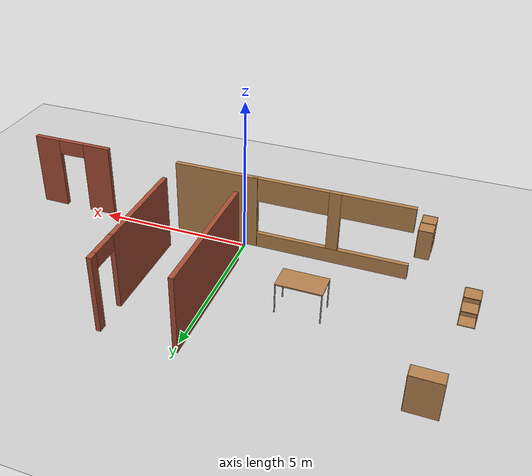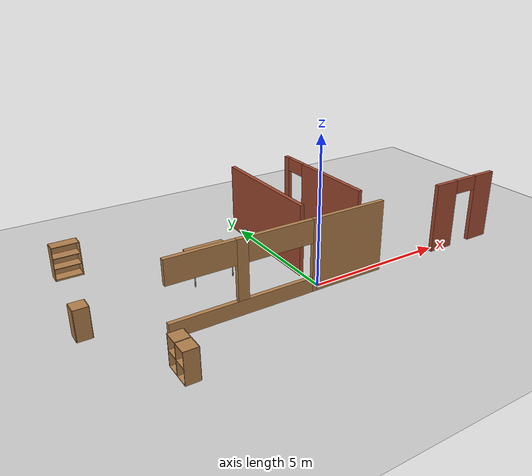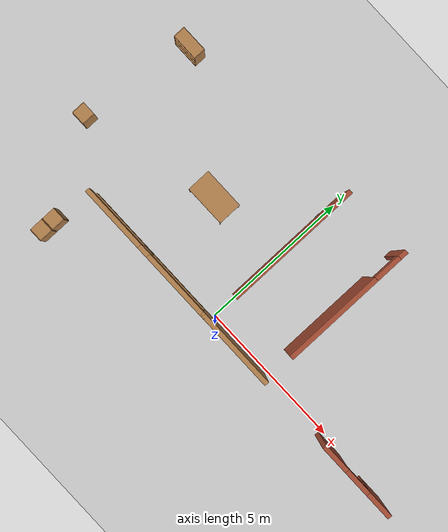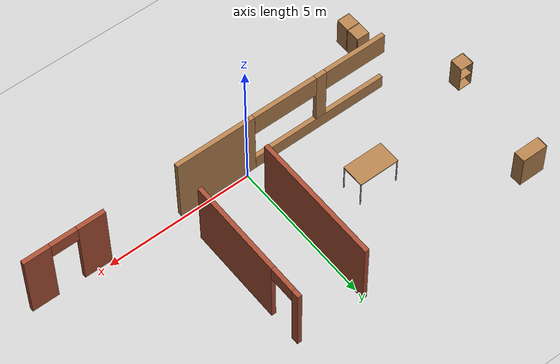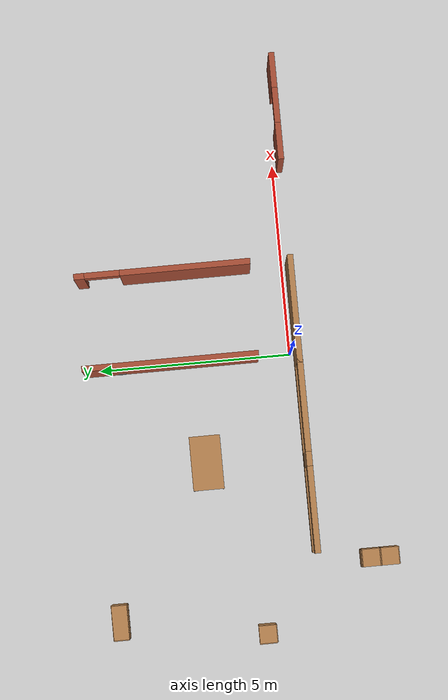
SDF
<sdf version="1.7">
 <world name="simple_house">
  <model name="ground_plane">
   <static>1</static>
   <link name="link">
    <collision name="collision">
     <geometry><plane><normal>0 0 1</normal><size>100 100</size></plane></geometry>
     <surface><friction><ode><mu>100</mu><mu2>50</mu2></ode></friction></surface>
    </collision>
    <visual name="visual">
     <cast_shadows>0</cast_shadows>
     <geometry><plane><normal>0 0 1</normal><size>100 100</size></plane></geometry>
     <material>
      <script><uri>file://media/materials/scripts/gazebo.material</uri><name>Gazebo/Grey</name></script>
     </material>
    </visual>
   </link>
  </model>
  <model name="Wall_101">
   <static>1</static>
   <link name="Wall_101_link">
    <pose>-0.05 3.1 0 0 0 -1.5708</pose>
    <visual name="Wall_101_Visual">
     <pose>0 0 1.25 0 -0 0</pose>
     <geometry><box><size>4.5 0.15 2.5</size></box></geometry>
     <material>
      <script><uri>file://media/materials/scripts/gazebo.material</uri><name>Gazebo/Bricks</name></script>
      <ambient>1 1 1 1</ambient>
      <diffuse>1 1 1 1</diffuse>
      <specular>0.2 0.2 0.2 1</specular>
      <emissive>0 0 0 1</emissive>
     </material>
    </visual>
    <collision name="Wall_101_Collision">
     <pose>0 0 1.25 0 -0 0</pose>
     <geometry><box><size>4.5 0.15 2.5</size></box></geometry>
     <surface>
      <friction>
       <ode><mu>1</mu><mu2>1</mu2><fdir1>0 0 0</fdir1><slip1>0</slip1><slip2>0</slip2></ode>
       <torsional>
        <coefficient>1</coefficient>
        <patch_radius>0</patch_radius>
        <surface_radius>0</surface_radius>
        <use_patch_radius>1</use_patch_radius>
        <ode><slip>0</slip></ode>
       </torsional>
      </friction>
      <bounce><restitution_coefficient>0</restitution_coefficient><threshold>1e+06</threshold></bounce>
      <contact>
       <collide_without_contact>0</collide_without_contact>
       <collide_without_contact_bitmask>1</collide_without_contact_bitmask>
       <collide_bitmask>1</collide_bitmask>
       <ode>
        <soft_cfm>0</soft_cfm>
        <soft_erp>0.2</soft_erp>
        <kp>1e+13</kp>
        <kd>1</kd>
        <max_vel>0.01</max_vel>
        <min_depth>0</min_depth>
       </ode>
       <bullet>
        <split_impulse>1</split_impulse>
        <split_impulse_penetration_threshold>-0.01</split_impulse_penetration_threshold>
        <soft_cfm>0</soft_cfm>
        <soft_erp>0.2</soft_erp>
        <kp>1e+13</kp>
        <kd>1</kd>
       </bullet>
      </contact>
     </surface>
    </collision>
   </link>
  </model>
  <model name="Wall_104">
   <static>1</static>
   <link name="Wall_104_link">
    <pose>2.3 3.1 0 0 -0 1.5708</pose>
    <visual name="Wall_104_Visual_1">
     <pose>2.11625 0 1.25 0 -0 0</pose>
     <geometry><box><size>0.267504 0.15 2.5</size></box></geometry>
     <material>
      <script><uri>file://media/materials/scripts/gazebo.material</uri><name>Gazebo/Bricks</name></script>
      <ambient>1 1 1 1</ambient>
      <diffuse>1 1 1 1</diffuse>
      <specular>0.2 0.2 0.2 1</specular>
      <emissive>0 0 0 1</emissive>
     </material>
    </visual>
    <visual name="Wall_104_Visual_2">
     <pose>1.5325 0 2.25 0 -0 0</pose>
     <geometry><box><size>0.9 0.15 0.5</size></box></geometry>
     <material>
      <script><uri>file://media/materials/scripts/gazebo.material</uri><name>Gazebo/Bricks</name></script>
      <ambient>1 1 1 1</ambient>
      <diffuse>1 1 1 1</diffuse>
      <specular>0.2 0.2 0.2 1</specular>
      <emissive>0 0 0 1</emissive>
     </material>
    </visual>
    <visual name="Wall_104_Visual_0">
     <pose>-0.583752 0 1.25 0 -0 0</pose>
     <geometry><box><size>3.3325 0.15 2.5</size></box></geometry>
     <material>
      <script><uri>file://media/materials/scripts/gazebo.material</uri><name>Gazebo/Bricks</name></script>
      <ambient>1 1 1 1</ambient>
      <diffuse>1 1 1 1</diffuse>
      <specular>0.2 0.2 0.2 1</specular>
      <emissive>0 0 0 1</emissive>
     </material>
    </visual>
    <collision name="Wall_104_Collision_1">
     <pose>2.11625 0 1.25 0 -0 0</pose>
     <geometry><box><size>0.267504 0.15 2.5</size></box></geometry>
     <surface>
      <friction>
       <ode><mu>1</mu><mu2>1</mu2><fdir1>0 0 0</fdir1><slip1>0</slip1><slip2>0</slip2></ode>
       <torsional>
        <coefficient>1</coefficient>
        <patch_radius>0</patch_radius>
        <surface_radius>0</surface_radius>
        <use_patch_radius>1</use_patch_radius>
        <ode><slip>0</slip></ode>
       </torsional>
      </friction>
      <bounce><restitution_coefficient>0</restitution_coefficient><threshold>1e+06</threshold></bounce>
      <contact>
       <collide_without_contact>0</collide_without_contact>
       <collide_without_contact_bitmask>1</collide_without_contact_bitmask>
       <collide_bitmask>1</collide_bitmask>
       <ode>
        <soft_cfm>0</soft_cfm>
        <soft_erp>0.2</soft_erp>
        <kp>1e+13</kp>
        <kd>1</kd>
        <max_vel>0.01</max_vel>
        <min_depth>0</min_depth>
       </ode>
       <bullet>
        <split_impulse>1</split_impulse>
        <split_impulse_penetration_threshold>-0.01</split_impulse_penetration_threshold>
        <soft_cfm>0</soft_cfm>
        <soft_erp>0.2</soft_erp>
        <kp>1e+13</kp>
        <kd>1</kd>
       </bullet>
      </contact>
     </surface>
    </collision>
    <collision name="Wall_104_Collision_2">
     <pose>1.5325 0 2.25 0 -0 0</pose>
     <geometry><box><size>0.9 0.15 0.5</size></box></geometry>
     <surface>
      <friction>
       <ode><mu>1</mu><mu2>1</mu2><fdir1>0 0 0</fdir1><slip1>0</slip1><slip2>0</slip2></ode>
       <torsional>
        <coefficient>1</coefficient>
        <patch_radius>0</patch_radius>
        <surface_radius>0</surface_radius>
        <use_patch_radius>1</use_patch_radius>
        <ode><slip>0</slip></ode>
       </torsional>
      </friction>
      <bounce><restitution_coefficient>0</restitution_coefficient><threshold>1e+06</threshold></bounce>
      <contact>
       <collide_without_contact>0</collide_without_contact>
       <collide_without_contact_bitmask>1</collide_without_contact_bitmask>
       <collide_bitmask>1</collide_bitmask>
       <ode>
        <soft_cfm>0</soft_cfm>
        <soft_erp>0.2</soft_erp>
        <kp>1e+13</kp>
        <kd>1</kd>
        <max_vel>0.01</max_vel>
        <min_depth>0</min_depth>
       </ode>
       <bullet>
        <split_impulse>1</split_impulse>
        <split_impulse_penetration_threshold>-0.01</split_impulse_penetration_threshold>
        <soft_cfm>0</soft_cfm>
        <soft_erp>0.2</soft_erp>
        <kp>1e+13</kp>
        <kd>1</kd>
       </bullet>
      </contact>
     </surface>
    </collision>
    <collision name="Wall_104_Collision_0">
     <pose>-0.583752 0 1.25 0 -0 0</pose>
     <geometry><box><size>3.3325 0.15 2.5</size></box></geometry>
     <surface>
      <friction>
       <ode><mu>1</mu><mu2>1</mu2><fdir1>0 0 0</fdir1><slip1>0</slip1><slip2>0</slip2></ode>
       <torsional>
        <coefficient>1</coefficient>
        <patch_radius>0</patch_radius>
        <surface_radius>0</surface_radius>
        <use_patch_radius>1</use_patch_radius>
        <ode><slip>0</slip></ode>
       </torsional>
      </friction>
      <bounce><restitution_coefficient>0</restitution_coefficient><threshold>1e+06</threshold></bounce>
      <contact>
       <collide_without_contact>0</collide_without_contact>
       <collide_without_contact_bitmask>1</collide_without_contact_bitmask>
       <collide_bitmask>1</collide_bitmask>
       <ode>
        <soft_cfm>0</soft_cfm>
        <soft_erp>0.2</soft_erp>
        <kp>1e+13</kp>
        <kd>1</kd>
        <max_vel>0.01</max_vel>
        <min_depth>0</min_depth>
       </ode>
       <bullet>
        <split_impulse>1</split_impulse>
        <split_impulse_penetration_threshold>-0.01</split_impulse_penetration_threshold>
        <soft_cfm>0</soft_cfm>
        <soft_erp>0.2</soft_erp>
        <kp>1e+13</kp>
        <kd>1</kd>
       </bullet>
      </contact>
     </surface>
    </collision>
   </link>
  </model>
  <model name="Wall_106">
   <static>1</static>
   <link name="Wall_106_link">
    <pose>6.2 -0.175 0 0 -0 0</pose>
    <visual name="Wall_106_Visual_1">
     <pose>0.922235 0 1.25 0 -0 0</pose>
     <geometry><box><size>0.905529 0.15 2.5</size></box></geometry>
     <material>
      <script><uri>file://media/materials/scripts/gazebo.material</uri><name>Gazebo/Bricks</name></script>
      <ambient>1 1 1 1</ambient>
      <diffuse>1 1 1 1</diffuse>
      <specular>0.2 0.2 0.2 1</specular>
      <emissive>0 0 0 1</emissive>
     </material>
    </visual>
    <visual name="Wall_106_Visual_2">
     <pose>0.019471 0 2.25 0 -0 0</pose>
     <geometry><box><size>0.9 0.15 0.5</size></box></geometry>
     <material>
      <script><uri>file://media/materials/scripts/gazebo.material</uri><name>Gazebo/Bricks</name></script>
      <ambient>1 1 1 1</ambient>
      <diffuse>1 1 1 1</diffuse>
      <specular>0.2 0.2 0.2 1</specular>
      <emissive>0 0 0 1</emissive>
     </material>
    </visual>
    <visual name="Wall_106_Visual_0">
     <pose>-0.902765 0 1.25 0 -0 0</pose>
     <geometry><box><size>0.944471 0.15 2.5</size></box></geometry>
     <material>
      <script><uri>file://media/materials/scripts/gazebo.material</uri><name>Gazebo/Bricks</name></script>
      <ambient>1 1 1 1</ambient>
      <diffuse>1 1 1 1</diffuse>
      <specular>0.2 0.2 0.2 1</specular>
      <emissive>0 0 0 1</emissive>
     </material>
    </visual>
    <collision name="Wall_106_Collision_1">
     <pose>0.922235 0 1.25 0 -0 0</pose>
     <geometry><box><size>0.905529 0.15 2.5</size></box></geometry>
     <surface>
      <friction>
       <ode><mu>1</mu><mu2>1</mu2><fdir1>0 0 0</fdir1><slip1>0</slip1><slip2>0</slip2></ode>
       <torsional>
        <coefficient>1</coefficient>
        <patch_radius>0</patch_radius>
        <surface_radius>0</surface_radius>
        <use_patch_radius>1</use_patch_radius>
        <ode><slip>0</slip></ode>
       </torsional>
      </friction>
      <bounce><restitution_coefficient>0</restitution_coefficient><threshold>1e+06</threshold></bounce>
      <contact>
       <collide_without_contact>0</collide_without_contact>
       <collide_without_contact_bitmask>1</collide_without_contact_bitmask>
       <collide_bitmask>1</collide_bitmask>
       <ode>
        <soft_cfm>0</soft_cfm>
        <soft_erp>0.2</soft_erp>
        <kp>1e+13</kp>
        <kd>1</kd>
        <max_vel>0.01</max_vel>
        <min_depth>0</min_depth>
       </ode>
       <bullet>
        <split_impulse>1</split_impulse>
        <split_impulse_penetration_threshold>-0.01</split_impulse_penetration_threshold>
        <soft_cfm>0</soft_cfm>
        <soft_erp>0.2</soft_erp>
        <kp>1e+13</kp>
        <kd>1</kd>
       </bullet>
      </contact>
     </surface>
    </collision>
    <collision name="Wall_106_Collision_0">
     <pose>-0.902765 0 1.25 0 -0 0</pose>
     <geometry><box><size>0.944471 0.15 2.5</size></box></geometry>
     <surface>
      <friction>
       <ode><mu>1</mu><mu2>1</mu2><fdir1>0 0 0</fdir1><slip1>0</slip1><slip2>0</slip2></ode>
       <torsional>
        <coefficient>1</coefficient>
        <patch_radius>0</patch_radius>
        <surface_radius>0</surface_radius>
        <use_patch_radius>1</use_patch_radius>
        <ode><slip>0</slip></ode>
       </torsional>
      </friction>
      <bounce><restitution_coefficient>0</restitution_coefficient><threshold>1e+06</threshold></bounce>
      <contact>
       <collide_without_contact>0</collide_without_contact>
       <collide_without_contact_bitmask>1</collide_without_contact_bitmask>
       <collide_bitmask>1</collide_bitmask>
       <ode>
        <soft_cfm>0</soft_cfm>
        <soft_erp>0.2</soft_erp>
        <kp>1e+13</kp>
        <kd>1</kd>
        <max_vel>0.01</max_vel>
        <min_depth>0</min_depth>
       </ode>
       <bullet>
        <split_impulse>1</split_impulse>
        <split_impulse_penetration_threshold>-0.01</split_impulse_penetration_threshold>
        <soft_cfm>0</soft_cfm>
        <soft_erp>0.2</soft_erp>
        <kp>1e+13</kp>
        <kd>1</kd>
       </bullet>
      </contact>
     </surface>
    </collision>
    <collision name="Wall_106_Collision_2">
     <pose>0.019471 0 2.25 0 -0 0</pose>
     <geometry><box><size>0.9 0.15 0.5</size></box></geometry>
     <surface>
      <friction>
       <ode><mu>1</mu><mu2>1</mu2><fdir1>0 0 0</fdir1><slip1>0</slip1><slip2>0</slip2></ode>
       <torsional>
        <coefficient>1</coefficient>
        <patch_radius>0</patch_radius>
        <surface_radius>0</surface_radius>
        <use_patch_radius>1</use_patch_radius>
        <ode><slip>0</slip></ode>
       </torsional>
      </friction>
      <bounce><restitution_coefficient>0</restitution_coefficient><threshold>1e+06</threshold></bounce>
      <contact>
       <collide_without_contact>0</collide_without_contact>
       <collide_without_contact_bitmask>1</collide_without_contact_bitmask>
       <collide_bitmask>1</collide_bitmask>
       <ode>
        <soft_cfm>0</soft_cfm>
        <soft_erp>0.2</soft_erp>
        <kp>1e+13</kp>
        <kd>1</kd>
        <max_vel>0.01</max_vel>
        <min_depth>0</min_depth>
       </ode>
       <bullet>
        <split_impulse>1</split_impulse>
        <split_impulse_penetration_threshold>-0.01</split_impulse_penetration_threshold>
        <soft_cfm>0</soft_cfm>
        <soft_erp>0.2</soft_erp>
        <kp>1e+13</kp>
        <kd>1</kd>
       </bullet>
      </contact>
     </surface>
    </collision>
   </link>
  </model>
  <model name="bookshelf">
   <static>1</static>
   <link name="link">
    <inertial><mass>1</mass></inertial>
    <collision name="back">
     <pose>0 0.005 0.6 0 -0 0</pose>
     <geometry><box><size>0.9 0.01 1.2</size></box></geometry>
    </collision>
    <visual name="visual1">
     <pose>0 0.005 0.6 0 -0 0</pose>
     <geometry><box><size>0.9 0.01 1.2</size></box></geometry>
     <material>
      <script><uri>file://media/materials/scripts/gazebo.material</uri><name>Gazebo/Wood</name></script>
     </material>
    </visual>
    <collision name="left_side">
     <pose>0.45 -0.195 0.6 0 -0 0</pose>
     <geometry><box><size>0.02 0.4 1.2</size></box></geometry>
    </collision>
    <visual name="visual2">
     <pose>0.45 -0.195 0.6 0 -0 0</pose>
     <geometry><box><size>0.02 0.4 1.2</size></box></geometry>
     <material>
      <script><uri>file://media/materials/scripts/gazebo.material</uri><name>Gazebo/Wood</name></script>
     </material>
    </visual>
    <collision name="right_side">
     <pose>-0.45 -0.195 0.6 0 -0 0</pose>
     <geometry><box><size>0.02 0.4 1.2</size></box></geometry>
    </collision>
    <visual name="visual3">
     <pose>-0.45 -0.195 0.6 0 -0 0</pose>
     <geometry><box><size>0.02 0.4 1.2</size></box></geometry>
     <material>
      <script><uri>file://media/materials/scripts/gazebo.material</uri><name>Gazebo/Wood</name></script>
     </material>
    </visual>
    <collision name="bottom">
     <pose>0 -0.195 0.03 0 -0 0</pose>
     <geometry><box><size>0.88 0.4 0.06</size></box></geometry>
    </collision>
    <visual name="visual4">
     <pose>0 -0.195 0.03 0 -0 0</pose>
     <geometry><box><size>0.88 0.4 0.06</size></box></geometry>
     <material>
      <script><uri>file://media/materials/scripts/gazebo.material</uri><name>Gazebo/Wood</name></script>
     </material>
    </visual>
    <collision name="top">
     <pose>0 -0.195 1.19 0 -0 0</pose>
     <geometry><box><size>0.88 0.4 0.02</size></box></geometry>
    </collision>
    <visual name="visual5">
     <pose>0 -0.195 1.19 0 -0 0</pose>
     <geometry><box><size>0.88 0.4 0.02</size></box></geometry>
     <material>
      <script><uri>file://media/materials/scripts/gazebo.material</uri><name>Gazebo/Wood</name></script>
     </material>
    </visual>
    <collision name="low_shelf">
     <pose>0 -0.195 0.43 0 -0 0</pose>
     <geometry><box><size>0.88 0.4 0.02</size></box></geometry>
    </collision>
    <visual name="visual6">
     <pose>0 -0.195 0.43 0 -0 0</pose>
     <geometry><box><size>0.88 0.4 0.02</size></box></geometry>
     <material>
      <script><uri>file://media/materials/scripts/gazebo.material</uri><name>Gazebo/Wood</name></script>
     </material>
    </visual>
    <collision name="high_shelf">
     <pose>0 -0.195 0.8 0 -0 0</pose>
     <geometry><box><size>0.88 0.4 0.02</size></box></geometry>
    </collision>
    <visual name="visual7">
     <pose>0 -0.195 0.8 0 -0 0</pose>
     <geometry><box><size>0.88 0.4 0.02</size></box></geometry>
     <material>
      <script><uri>file://media/materials/scripts/gazebo.material</uri><name>Gazebo/Wood</name></script>
     </material>
    </visual>
   </link>
   <pose>-6.54397 5.19486 0 0 -0 0</pose>
  </model>
  <model name="cabinet">
   <static>1</static>
   <link name="cabinet_bottom_plate">
    <inertial>
     <pose>0 0 -1 0 -0 0</pose>
     <inertia><ixx>2.05</ixx><ixy>0</ixy><ixz>0</ixz><iyy>2.05</iyy><iyz>0</iyz><izz>2.05</izz></inertia>
     <mass>25</mass>
    </inertial>
    <collision name="cabinet_bottom_plate_geom">
     <pose>0 0 0.01 0 -0 0</pose>
     <geometry><box><size>0.45 0.45 0.02</size></box></geometry>
    </collision>
    <visual name="cabinet_bottom_plate_geom_visual">
     <pose>0 0 0.01 0 -0 0</pose>
     <geometry><box><size>0.45 0.45 0.02</size></box></geometry>
     <material>
      <script><uri>file://media/materials/scripts/gazebo.material</uri><name>Gazebo/Wood</name></script>
     </material>
    </visual>
    <collision name="cabinet_bottom_plate_geom_cabinet_back_plate">
     <pose>0.235 0 0.51 0 -0 0</pose>
     <geometry><box><size>0.02 0.45 1.02</size></box></geometry>
    </collision>
    <visual name="cabinet_bottom_plate_geom_cabinet_back_plate_visual">
     <pose>0.235 0 0.51 0 -0 0</pose>
     <geometry><box><size>0.02 0.45 1.02</size></box></geometry>
     <material>
      <script><uri>file://media/materials/scripts/gazebo.material</uri><name>Gazebo/Wood</name></script>
     </material>
    </visual>
    <collision name="cabinet_bottom_plate_geom_cabinet_left_plate">
     <pose>0 0.235 0.51 0 -0 0</pose>
     <geometry><box><size>0.45 0.02 1.02</size></box></geometry>
    </collision>
    <visual name="cabinet_bottom_plate_geom_cabinet_left_plate_visual">
     <pose>0 0.235 0.51 0 -0 0</pose>
     <geometry><box><size>0.45 0.02 1.02</size></box></geometry>
     <material>
      <script><uri>file://media/materials/scripts/gazebo.material</uri><name>Gazebo/Wood</name></script>
     </material>
    </visual>
    <collision name="cabinet_bottom_plate_geom_cabinet_middle_plate">
     <pose>0 0 0.51 0 -0 0</pose>
     <geometry><box><size>0.45 0.45 0.02</size></box></geometry>
    </collision>
    <visual name="cabinet_bottom_plate_geom_cabinet_middle_plate_visual">
     <pose>0 0 0.51 0 -0 0</pose>
     <geometry><box><size>0.45 0.45 0.02</size></box></geometry>
     <material>
      <script><uri>file://media/materials/scripts/gazebo.material</uri><name>Gazebo/Wood</name></script>
     </material>
    </visual>
    <collision name="cabinet_bottom_plate_geom_cabinet_right_plate">
     <pose>0 -0.235 0.51 0 -0 0</pose>
     <geometry><box><size>0.45 0.02 1.02</size></box></geometry>
    </collision>
    <visual name="cabinet_bottom_plate_geom_cabinet_right_plate_visual">
     <pose>0 -0.235 0.51 0 -0 0</pose>
     <geometry><box><size>0.45 0.02 1.02</size></box></geometry>
     <material>
      <script><uri>file://media/materials/scripts/gazebo.material</uri><name>Gazebo/Wood</name></script>
     </material>
    </visual>
    <collision name="cabinet_bottom_plate_geom_cabinet_top_plate">
     <pose>0 0 1.01 0 -0 0</pose>
     <geometry><box><size>0.45 0.45 0.02</size></box></geometry>
    </collision>
    <visual name="cabinet_bottom_plate_geom_cabinet_top_plate_visual">
     <pose>0 0 1.01 0 -0 0</pose>
     <geometry><box><size>0.45 0.45 0.02</size></box></geometry>
     <material>
      <script><uri>file://media/materials/scripts/gazebo.material</uri><name>Gazebo/Wood</name></script>
     </material>
    </visual>
   </link>
   <pose>-5.472 -1.57624 0 0 -0 0</pose>
  </model>
  <model name="cabinet_0">
   <static>1</static>
   <link name="cabinet_bottom_plate">
    <inertial>
     <pose>0 0 -1 0 -0 0</pose>
     <inertia><ixx>2.05</ixx><ixy>0</ixy><ixz>0</ixz><iyy>2.05</iyy><iyz>0</iyz><izz>2.05</izz></inertia>
     <mass>25</mass>
    </inertial>
    <collision name="cabinet_bottom_plate_geom">
     <pose>0 0 0.01 0 -0 0</pose>
     <geometry><box><size>0.45 0.45 0.02</size></box></geometry>
    </collision>
    <visual name="cabinet_bottom_plate_geom_visual">
     <pose>0 0 0.01 0 -0 0</pose>
     <geometry><box><size>0.45 0.45 0.02</size></box></geometry>
     <material>
      <script><uri>file://media/materials/scripts/gazebo.material</uri><name>Gazebo/Wood</name></script>
     </material>
    </visual>
    <collision name="cabinet_bottom_plate_geom_cabinet_back_plate">
     <pose>0.235 0 0.51 0 -0 0</pose>
     <geometry><box><size>0.02 0.45 1.02</size></box></geometry>
    </collision>
    <visual name="cabinet_bottom_plate_geom_cabinet_back_plate_visual">
     <pose>0.235 0 0.51 0 -0 0</pose>
     <geometry><box><size>0.02 0.45 1.02</size></box></geometry>
     <material>
      <script><uri>file://media/materials/scripts/gazebo.material</uri><name>Gazebo/Wood</name></script>
     </material>
    </visual>
    <collision name="cabinet_bottom_plate_geom_cabinet_left_plate">
     <pose>0 0.235 0.51 0 -0 0</pose>
     <geometry><box><size>0.45 0.02 1.02</size></box></geometry>
    </collision>
    <visual name="cabinet_bottom_plate_geom_cabinet_left_plate_visual">
     <pose>0 0.235 0.51 0 -0 0</pose>
     <geometry><box><size>0.45 0.02 1.02</size></box></geometry>
     <material>
      <script><uri>file://media/materials/scripts/gazebo.material</uri><name>Gazebo/Wood</name></script>
     </material>
    </visual>
    <collision name="cabinet_bottom_plate_geom_cabinet_middle_plate">
     <pose>0 0 0.51 0 -0 0</pose>
     <geometry><box><size>0.45 0.45 0.02</size></box></geometry>
    </collision>
    <visual name="cabinet_bottom_plate_geom_cabinet_middle_plate_visual">
     <pose>0 0 0.51 0 -0 0</pose>
     <geometry><box><size>0.45 0.45 0.02</size></box></geometry>
     <material>
      <script><uri>file://media/materials/scripts/gazebo.material</uri><name>Gazebo/Wood</name></script>
     </material>
    </visual>
    <collision name="cabinet_bottom_plate_geom_cabinet_right_plate">
     <pose>0 -0.235 0.51 0 -0 0</pose>
     <geometry><box><size>0.45 0.02 1.02</size></box></geometry>
    </collision>
    <visual name="cabinet_bottom_plate_geom_cabinet_right_plate_visual">
     <pose>0 -0.235 0.51 0 -0 0</pose>
     <geometry><box><size>0.45 0.02 1.02</size></box></geometry>
     <material>
      <script><uri>file://media/materials/scripts/gazebo.material</uri><name>Gazebo/Wood</name></script>
     </material>
    </visual>
    <collision name="cabinet_bottom_plate_geom_cabinet_top_plate">
     <pose>0 0 1.01 0 -0 0</pose>
     <geometry><box><size>0.45 0.45 0.02</size></box></geometry>
    </collision>
    <visual name="cabinet_bottom_plate_geom_cabinet_top_plate_visual">
     <pose>0 0 1.01 0 -0 0</pose>
     <geometry><box><size>0.45 0.45 0.02</size></box></geometry>
     <material>
      <script><uri>file://media/materials/scripts/gazebo.material</uri><name>Gazebo/Wood</name></script>
     </material>
    </visual>
   </link>
   <pose>-5.47289 -2.06545 0 0 -0 0</pose>
  </model>
  <model name="cabinet_1">
   <static>1</static>
   <link name="cabinet_bottom_plate">
    <inertial>
     <pose>0 0 -1 0 -0 0</pose>
     <inertia><ixx>2.05</ixx><ixy>0</ixy><ixz>0</ixz><iyy>2.05</iyy><iyz>0</iyz><izz>2.05</izz></inertia>
     <mass>25</mass>
    </inertial>
    <collision name="cabinet_bottom_plate_geom">
     <pose>0 0 0.01 0 -0 0</pose>
     <geometry><box><size>0.45 0.45 0.02</size></box></geometry>
    </collision>
    <visual name="cabinet_bottom_plate_geom_visual">
     <pose>0 0 0.01 0 -0 0</pose>
     <geometry><box><size>0.45 0.45 0.02</size></box></geometry>
     <material>
      <script><uri>file://media/materials/scripts/gazebo.material</uri><name>Gazebo/Wood</name></script>
     </material>
    </visual>
    <collision name="cabinet_bottom_plate_geom_cabinet_back_plate">
     <pose>0.235 0 0.51 0 -0 0</pose>
     <geometry><box><size>0.02 0.45 1.02</size></box></geometry>
    </collision>
    <visual name="cabinet_bottom_plate_geom_cabinet_back_plate_visual">
     <pose>0.235 0 0.51 0 -0 0</pose>
     <geometry><box><size>0.02 0.45 1.02</size></box></geometry>
     <material>
      <script><uri>file://media/materials/scripts/gazebo.material</uri><name>Gazebo/Wood</name></script>
     </material>
    </visual>
    <collision name="cabinet_bottom_plate_geom_cabinet_left_plate">
     <pose>0 0.235 0.51 0 -0 0</pose>
     <geometry><box><size>0.45 0.02 1.02</size></box></geometry>
    </collision>
    <visual name="cabinet_bottom_plate_geom_cabinet_left_plate_visual">
     <pose>0 0.235 0.51 0 -0 0</pose>
     <geometry><box><size>0.45 0.02 1.02</size></box></geometry>
     <material>
      <script><uri>file://media/materials/scripts/gazebo.material</uri><name>Gazebo/Wood</name></script>
     </material>
    </visual>
    <collision name="cabinet_bottom_plate_geom_cabinet_middle_plate">
     <pose>0 0 0.51 0 -0 0</pose>
     <geometry><box><size>0.45 0.45 0.02</size></box></geometry>
    </collision>
    <visual name="cabinet_bottom_plate_geom_cabinet_middle_plate_visual">
     <pose>0 0 0.51 0 -0 0</pose>
     <geometry><box><size>0.45 0.45 0.02</size></box></geometry>
     <material>
      <script><uri>file://media/materials/scripts/gazebo.material</uri><name>Gazebo/Wood</name></script>
     </material>
    </visual>
    <collision name="cabinet_bottom_plate_geom_cabinet_right_plate">
     <pose>0 -0.235 0.51 0 -0 0</pose>
     <geometry><box><size>0.45 0.02 1.02</size></box></geometry>
    </collision>
    <visual name="cabinet_bottom_plate_geom_cabinet_right_plate_visual">
     <pose>0 -0.235 0.51 0 -0 0</pose>
     <geometry><box><size>0.45 0.02 1.02</size></box></geometry>
     <material>
      <script><uri>file://media/materials/scripts/gazebo.material</uri><name>Gazebo/Wood</name></script>
     </material>
    </visual>
    <collision name="cabinet_bottom_plate_geom_cabinet_top_plate">
     <pose>0 0 1.01 0 -0 0</pose>
     <geometry><box><size>0.45 0.45 0.02</size></box></geometry>
    </collision>
    <visual name="cabinet_bottom_plate_geom_cabinet_top_plate_visual">
     <pose>0 0 1.01 0 -0 0</pose>
     <geometry><box><size>0.45 0.45 0.02</size></box></geometry>
     <material>
      <script><uri>file://media/materials/scripts/gazebo.material</uri><name>Gazebo/Wood</name></script>
     </material>
    </visual>
   </link>
   <pose>-7.18363 1.24799 0 0 0 -1.5708</pose>
  </model>
  <model name="table">
   <static>1</static>
   <link name="link">
    <collision name="collision">
     <pose>0 0 1 0 -0 0</pose>
     <geometry><box><size>1.5 0.8 0.03</size></box></geometry>
     <surface><friction><ode><mu>0.6</mu><mu2>0.6</mu2></ode></friction></surface>
    </collision>
    <visual name="visual">
     <pose>0 0 1 0 -0 0</pose>
     <geometry><box><size>1.4 0.8 0.04</size></box></geometry>
     <material>
      <script><uri>file://media/materials/scripts/gazebo.material</uri><name>Gazebo/Wood</name></script>
     </material>
    </visual>
    <collision name="front_left_leg_collision">
     <pose>0.68 0.38 0.5 0 -0 0</pose>
     <geometry><cylinder><radius>0.02</radius><length>1</length></cylinder></geometry>
    </collision>
    <visual name="front_left_leg_visual">
     <pose>0.68 0.38 0.5 0 -0 0</pose>
     <geometry><cylinder><radius>0.02</radius><length>1</length></cylinder></geometry>
     <material>
      <script><uri>file://media/materials/scripts/gazebo.material</uri><name>Gazebo/Grey</name></script>
     </material>
    </visual>
    <collision name="front_right_leg_collision">
     <pose>0.68 -0.38 0.5 0 -0 0</pose>
     <geometry><cylinder><radius>0.02</radius><length>1</length></cylinder></geometry>
    </collision>
    <visual name="front_right_leg_visual">
     <pose>0.68 -0.38 0.5 0 -0 0</pose>
     <geometry><cylinder><radius>0.02</radius><length>1</length></cylinder></geometry>
     <material>
      <script><uri>file://media/materials/scripts/gazebo.material</uri><name>Gazebo/Grey</name></script>
     </material>
    </visual>
    <collision name="back_right_leg_collision">
     <pose>-0.68 -0.38 0.5 0 -0 0</pose>
     <geometry><cylinder><radius>0.02</radius><length>1</length></cylinder></geometry>
    </collision>
    <visual name="back_right_leg_visual">
     <pose>-0.68 -0.38 0.5 0 -0 0</pose>
     <geometry><cylinder><radius>0.02</radius><length>1</length></cylinder></geometry>
     <material>
      <script><uri>file://media/materials/scripts/gazebo.material</uri><name>Gazebo/Grey</name></script>
     </material>
    </visual>
    <collision name="back_left_leg_collision">
     <pose>-0.68 0.38 0.5 0 -0 0</pose>
     <geometry><cylinder><radius>0.02</radius><length>1</length></cylinder></geometry>
    </collision>
    <visual name="back_left_leg_visual">
     <pose>-0.68 0.38 0.5 0 -0 0</pose>
     <geometry><cylinder><radius>0.02</radius><length>1</length></cylinder></geometry>
     <material>
      <script><uri>file://media/materials/scripts/gazebo.material</uri><name>Gazebo/Grey</name></script>
     </material>
    </visual>
   </link>
   <pose>-2.65728 2.42376 0 0 -0 0</pose>
  </model>
  <model name="Wall_83_clone">
   <static>1</static>
   <link name="Wall_83_link">
    <pose>-2.475 5.275 0 0 -0 3.14159</pose>
    <visual name="Wall_83_Visual_2">
     <pose>0.110246 0 1.5 0 -0 0</pose>
     <geometry><box><size>0.37052 0.15 2</size></box></geometry>
     <material>
      <script><uri>file://media/materials/scripts/gazebo.material</uri><name>Gazebo/Wood</name></script>
      <ambient>1 1 1 1</ambient>
      <diffuse>1 1 1 1</diffuse>
      <specular>0.2 0.2 0.2 1</specular>
      <emissive>0 0 0 1</emissive>
     </material>
    </visual>
    <visual name="Wall_83_Visual_6">
     <pose>1.39775 0 2.1 0 -0 0</pose>
     <geometry><box><size>2.20449 0.15 0.8</size></box></geometry>
     <material>
      <script><uri>file://media/materials/scripts/gazebo.material</uri><name>Gazebo/Wood</name></script>
      <ambient>1 1 1 1</ambient>
      <diffuse>1 1 1 1</diffuse>
      <specular>0.2 0.2 0.2 1</specular>
      <emissive>0 0 0 1</emissive>
     </material>
    </visual>
    <visual name="Wall_83_Visual_3">
     <pose>0.110246 0 1.5 0 -0 0</pose>
     <geometry><box><size>0.37052 0.15 2</size></box></geometry>
     <material>
      <script><uri>file://media/materials/scripts/gazebo.material</uri><name>Gazebo/Wood</name></script>
      <ambient>1 1 1 1</ambient>
      <diffuse>1 1 1 1</diffuse>
      <specular>0.2 0.2 0.2 1</specular>
      <emissive>0 0 0 1</emissive>
     </material>
    </visual>
    <visual name="Wall_83_Visual_1">
     <pose>0.080993 0 0.25 0 -0 0</pose>
     <geometry><box><size>4.83801 0.15 0.5</size></box></geometry>
     <material>
      <script><uri>file://media/materials/scripts/gazebo.material</uri><name>Gazebo/Wood</name></script>
      <ambient>1 1 1 1</ambient>
      <diffuse>1 1 1 1</diffuse>
      <specular>0.2 0.2 0.2 1</specular>
      <emissive>0 0 0 1</emissive>
     </material>
    </visual>
    <visual name="Wall_83_Visual_4">
     <pose>-1.20651 0 2.1 0 -0 0</pose>
     <geometry><box><size>2.263 0.15 0.8</size></box></geometry>
     <material>
      <script><uri>file://media/materials/scripts/gazebo.material</uri><name>Gazebo/Wood</name></script>
      <ambient>1 1 1 1</ambient>
      <diffuse>1 1 1 1</diffuse>
      <specular>0.2 0.2 0.2 1</specular>
      <emissive>0 0 0 1</emissive>
     </material>
    </visual>
    <visual name="Wall_83_Visual_5">
     <pose>1.39775 0 2.1 0 -0 0</pose>
     <geometry><box><size>2.20449 0.15 0.8</size></box></geometry>
     <material>
      <script><uri>file://media/materials/scripts/gazebo.material</uri><name>Gazebo/Wood</name></script>
      <ambient>1 1 1 1</ambient>
      <diffuse>1 1 1 1</diffuse>
      <specular>0.2 0.2 0.2 1</specular>
      <emissive>0 0 0 1</emissive>
     </material>
    </visual>
    <visual name="Wall_83_Visual_0">
     <pose>-2.41901 0 1.25 0 -0 0</pose>
     <geometry><box><size>0.161986 0.15 2.5</size></box></geometry>
     <material>
      <script><uri>file://media/materials/scripts/gazebo.material</uri><name>Gazebo/Wood</name></script>
      <ambient>1 1 1 1</ambient>
      <diffuse>1 1 1 1</diffuse>
      <specular>0.2 0.2 0.2 1</specular>
      <emissive>0 0 0 1</emissive>
     </material>
    </visual>
    <collision name="Wall_83_Collision_4">
     <pose>-1.20651 0 2.1 0 -0 0</pose>
     <geometry><box><size>2.263 0.15 0.8</size></box></geometry>
     <surface>
      <friction>
       <ode><mu>1</mu><mu2>1</mu2><fdir1>0 0 0</fdir1><slip1>0</slip1><slip2>0</slip2></ode>
       <torsional>
        <coefficient>1</coefficient>
        <patch_radius>0</patch_radius>
        <surface_radius>0</surface_radius>
        <use_patch_radius>1</use_patch_radius>
        <ode><slip>0</slip></ode>
       </torsional>
      </friction>
      <bounce><restitution_coefficient>0</restitution_coefficient><threshold>1e+06</threshold></bounce>
      <contact>
       <collide_without_contact>0</collide_without_contact>
       <collide_without_contact_bitmask>1</collide_without_contact_bitmask>
       <collide_bitmask>1</collide_bitmask>
       <ode>
        <soft_cfm>0</soft_cfm>
        <soft_erp>0.2</soft_erp>
        <kp>1e+13</kp>
        <kd>1</kd>
        <max_vel>0.01</max_vel>
        <min_depth>0</min_depth>
       </ode>
       <bullet>
        <split_impulse>1</split_impulse>
        <split_impulse_penetration_threshold>-0.01</split_impulse_penetration_threshold>
        <soft_cfm>0</soft_cfm>
        <soft_erp>0.2</soft_erp>
        <kp>1e+13</kp>
        <kd>1</kd>
       </bullet>
      </contact>
     </surface>
    </collision>
    <collision name="Wall_83_Collision_2">
     <pose>0.110246 0 1.5 0 -0 0</pose>
     <geometry><box><size>0.37052 0.15 2</size></box></geometry>
     <surface>
      <friction>
       <ode><mu>1</mu><mu2>1</mu2><fdir1>0 0 0</fdir1><slip1>0</slip1><slip2>0</slip2></ode>
       <torsional>
        <coefficient>1</coefficient>
        <patch_radius>0</patch_radius>
        <surface_radius>0</surface_radius>
        <use_patch_radius>1</use_patch_radius>
        <ode><slip>0</slip></ode>
       </torsional>
      </friction>
      <bounce><restitution_coefficient>0</restitution_coefficient><threshold>1e+06</threshold></bounce>
      <contact>
       <collide_without_contact>0</collide_without_contact>
       <collide_without_contact_bitmask>1</collide_without_contact_bitmask>
       <collide_bitmask>1</collide_bitmask>
       <ode>
        <soft_cfm>0</soft_cfm>
        <soft_erp>0.2</soft_erp>
        <kp>1e+13</kp>
        <kd>1</kd>
        <max_vel>0.01</max_vel>
        <min_depth>0</min_depth>
       </ode>
       <bullet>
        <split_impulse>1</split_impulse>
        <split_impulse_penetration_threshold>-0.01</split_impulse_penetration_threshold>
        <soft_cfm>0</soft_cfm>
        <soft_erp>0.2</soft_erp>
        <kp>1e+13</kp>
        <kd>1</kd>
       </bullet>
      </contact>
     </surface>
    </collision>
    <collision name="Wall_83_Collision_6">
     <pose>1.39775 0 2.1 0 -0 0</pose>
     <geometry><box><size>2.20449 0.15 0.8</size></box></geometry>
     <surface>
      <friction>
       <ode><mu>1</mu><mu2>1</mu2><fdir1>0 0 0</fdir1><slip1>0</slip1><slip2>0</slip2></ode>
       <torsional>
        <coefficient>1</coefficient>
        <patch_radius>0</patch_radius>
        <surface_radius>0</surface_radius>
        <use_patch_radius>1</use_patch_radius>
        <ode><slip>0</slip></ode>
       </torsional>
      </friction>
      <bounce><restitution_coefficient>0</restitution_coefficient><threshold>1e+06</threshold></bounce>
      <contact>
       <collide_without_contact>0</collide_without_contact>
       <collide_without_contact_bitmask>1</collide_without_contact_bitmask>
       <collide_bitmask>1</collide_bitmask>
       <ode>
        <soft_cfm>0</soft_cfm>
        <soft_erp>0.2</soft_erp>
        <kp>1e+13</kp>
        <kd>1</kd>
        <max_vel>0.01</max_vel>
        <min_depth>0</min_depth>
       </ode>
       <bullet>
        <split_impulse>1</split_impulse>
        <split_impulse_penetration_threshold>-0.01</split_impulse_penetration_threshold>
        <soft_cfm>0</soft_cfm>
        <soft_erp>0.2</soft_erp>
        <kp>1e+13</kp>
        <kd>1</kd>
       </bullet>
      </contact>
     </surface>
    </collision>
    <collision name="Wall_83_Collision_0">
     <pose>-2.41901 0 1.25 0 -0 0</pose>
     <geometry><box><size>0.161986 0.15 2.5</size></box></geometry>
     <surface>
      <friction>
       <ode><mu>1</mu><mu2>1</mu2><fdir1>0 0 0</fdir1><slip1>0</slip1><slip2>0</slip2></ode>
       <torsional>
        <coefficient>1</coefficient>
        <patch_radius>0</patch_radius>
        <surface_radius>0</surface_radius>
        <use_patch_radius>1</use_patch_radius>
        <ode><slip>0</slip></ode>
       </torsional>
      </friction>
      <bounce><restitution_coefficient>0</restitution_coefficient><threshold>1e+06</threshold></bounce>
      <contact>
       <collide_without_contact>0</collide_without_contact>
       <collide_without_contact_bitmask>1</collide_without_contact_bitmask>
       <collide_bitmask>1</collide_bitmask>
       <ode>
        <soft_cfm>0</soft_cfm>
        <soft_erp>0.2</soft_erp>
        <kp>1e+13</kp>
        <kd>1</kd>
        <max_vel>0.01</max_vel>
        <min_depth>0</min_depth>
       </ode>
       <bullet>
        <split_impulse>1</split_impulse>
        <split_impulse_penetration_threshold>-0.01</split_impulse_penetration_threshold>
        <soft_cfm>0</soft_cfm>
        <soft_erp>0.2</soft_erp>
        <kp>1e+13</kp>
        <kd>1</kd>
       </bullet>
      </contact>
     </surface>
    </collision>
    <collision name="Wall_83_Collision_1">
     <pose>0.080993 0 0.25 0 -0 0</pose>
     <geometry><box><size>4.83801 0.15 0.5</size></box></geometry>
     <surface>
      <friction>
       <ode><mu>1</mu><mu2>1</mu2><fdir1>0 0 0</fdir1><slip1>0</slip1><slip2>0</slip2></ode>
       <torsional>
        <coefficient>1</coefficient>
        <patch_radius>0</patch_radius>
        <surface_radius>0</surface_radius>
        <use_patch_radius>1</use_patch_radius>
        <ode><slip>0</slip></ode>
       </torsional>
      </friction>
      <bounce><restitution_coefficient>0</restitution_coefficient><threshold>1e+06</threshold></bounce>
      <contact>
       <collide_without_contact>0</collide_without_contact>
       <collide_without_contact_bitmask>1</collide_without_contact_bitmask>
       <collide_bitmask>1</collide_bitmask>
       <ode>
        <soft_cfm>0</soft_cfm>
        <soft_erp>0.2</soft_erp>
        <kp>1e+13</kp>
        <kd>1</kd>
        <max_vel>0.01</max_vel>
        <min_depth>0</min_depth>
       </ode>
       <bullet>
        <split_impulse>1</split_impulse>
        <split_impulse_penetration_threshold>-0.01</split_impulse_penetration_threshold>
        <soft_cfm>0</soft_cfm>
        <soft_erp>0.2</soft_erp>
        <kp>1e+13</kp>
        <kd>1</kd>
       </bullet>
      </contact>
     </surface>
    </collision>
    <collision name="Wall_83_Collision_3">
     <pose>0.110246 0 1.5 0 -0 0</pose>
     <geometry><box><size>0.37052 0.15 2</size></box></geometry>
     <surface>
      <friction>
       <ode><mu>1</mu><mu2>1</mu2><fdir1>0 0 0</fdir1><slip1>0</slip1><slip2>0</slip2></ode>
       <torsional>
        <coefficient>1</coefficient>
        <patch_radius>0</patch_radius>
        <surface_radius>0</surface_radius>
        <use_patch_radius>1</use_patch_radius>
        <ode><slip>0</slip></ode>
       </torsional>
      </friction>
      <bounce><restitution_coefficient>0</restitution_coefficient><threshold>1e+06</threshold></bounce>
      <contact>
       <collide_without_contact>0</collide_without_contact>
       <collide_without_contact_bitmask>1</collide_without_contact_bitmask>
       <collide_bitmask>1</collide_bitmask>
       <ode>
        <soft_cfm>0</soft_cfm>
        <soft_erp>0.2</soft_erp>
        <kp>1e+13</kp>
        <kd>1</kd>
        <max_vel>0.01</max_vel>
        <min_depth>0</min_depth>
       </ode>
       <bullet>
        <split_impulse>1</split_impulse>
        <split_impulse_penetration_threshold>-0.01</split_impulse_penetration_threshold>
        <soft_cfm>0</soft_cfm>
        <soft_erp>0.2</soft_erp>
        <kp>1e+13</kp>
        <kd>1</kd>
       </bullet>
      </contact>
     </surface>
    </collision>
    <collision name="Wall_83_Collision_5">
     <pose>1.39775 0 2.1 0 -0 0</pose>
     <geometry><box><size>2.20449 0.15 0.8</size></box></geometry>
     <surface>
      <friction>
       <ode><mu>1</mu><mu2>1</mu2><fdir1>0 0 0</fdir1><slip1>0</slip1><slip2>0</slip2></ode>
       <torsional>
        <coefficient>1</coefficient>
        <patch_radius>0</patch_radius>
        <surface_radius>0</surface_radius>
        <use_patch_radius>1</use_patch_radius>
        <ode><slip>0</slip></ode>
       </torsional>
      </friction>
      <bounce><restitution_coefficient>0</restitution_coefficient><threshold>1e+06</threshold></bounce>
      <contact>
       <collide_without_contact>0</collide_without_contact>
       <collide_without_contact_bitmask>1</collide_without_contact_bitmask>
       <collide_bitmask>1</collide_bitmask>
       <ode>
        <soft_cfm>0</soft_cfm>
        <soft_erp>0.2</soft_erp>
        <kp>1e+13</kp>
        <kd>1</kd>
        <max_vel>0.01</max_vel>
        <min_depth>0</min_depth>
       </ode>
       <bullet>
        <split_impulse>1</split_impulse>
        <split_impulse_penetration_threshold>-0.01</split_impulse_penetration_threshold>
        <soft_cfm>0</soft_cfm>
        <soft_erp>0.2</soft_erp>
        <kp>1e+13</kp>
        <kd>1</kd>
       </bullet>
      </contact>
     </surface>
    </collision>
   </link>
   <pose>-0.24029 -5.44908 0 0 -0 0</pose>
  </model>
  <model name="Wall_82_clone">
   <static>1</static>
   <link name="Wall_82_link">
    <pose>1.25 5.26876 0 0 -0 3.14159</pose>
    <visual name="Wall_82_Visual">
     <pose>0 0 1.25 0 -0 0</pose>
     <geometry><box><size>2.75 0.15 2.5</size></box></geometry>
     <material>
      <script><uri>file://media/materials/scripts/gazebo.material</uri><name>Gazebo/Wood</name></script>
      <ambient>1 1 1 1</ambient>
      <diffuse>1 1 1 1</diffuse>
      <specular>0.2 0.2 0.2 1</specular>
      <emissive>0 0 0 1</emissive>
     </material>
    </visual>
    <collision name="Wall_82_Collision">
     <pose>0 0 1.25 0 -0 0</pose>
     <geometry><box><size>2.75 0.15 2.5</size></box></geometry>
     <surface>
      <friction>
       <ode><mu>1</mu><mu2>1</mu2><fdir1>0 0 0</fdir1><slip1>0</slip1><slip2>0</slip2></ode>
       <torsional>
        <coefficient>1</coefficient>
        <patch_radius>0</patch_radius>
        <surface_radius>0</surface_radius>
        <use_patch_radius>1</use_patch_radius>
        <ode><slip>0</slip></ode>
       </torsional>
      </friction>
      <bounce><restitution_coefficient>0</restitution_coefficient><threshold>1e+06</threshold></bounce>
      <contact>
       <collide_without_contact>0</collide_without_contact>
       <collide_without_contact_bitmask>1</collide_without_contact_bitmask>
       <collide_bitmask>1</collide_bitmask>
       <ode>
        <soft_cfm>0</soft_cfm>
        <soft_erp>0.2</soft_erp>
        <kp>1e+13</kp>
        <kd>1</kd>
        <max_vel>0.01</max_vel>
        <min_depth>0</min_depth>
       </ode>
       <bullet>
        <split_impulse>1</split_impulse>
        <split_impulse_penetration_threshold>-0.01</split_impulse_penetration_threshold>
        <soft_cfm>0</soft_cfm>
        <soft_erp>0.2</soft_erp>
        <kp>1e+13</kp>
        <kd>1</kd>
       </bullet>
      </contact>
     </surface>
    </collision>
   </link>
   <pose>-0.24812 -5.43976 0 0 -0 0</pose>
  </model>
  <model name="Apriltag36_11_00000">
   <link name="main">
    <visual name="main_Visual">
     <geometry><box><size>0.2 0.2 0.01</size></box></geometry>
     <material>
      <script>
       <uri>model://Apriltag36_11_00000/materials/scripts</uri>
       <uri>model://Apriltag36_11_00000/materials/textures</uri>
       <name>Apriltag36_11_00000</name>
      </script>
     </material>
    </visual>
   </link>
   <static>1</static>
   <pose>-0.135413 4.40747 0.256496 0 -1.56869 0</pose>
  </model>
 </world>
</sdf>
